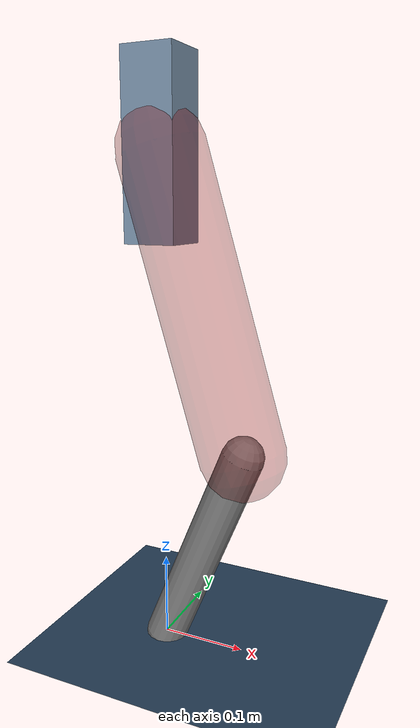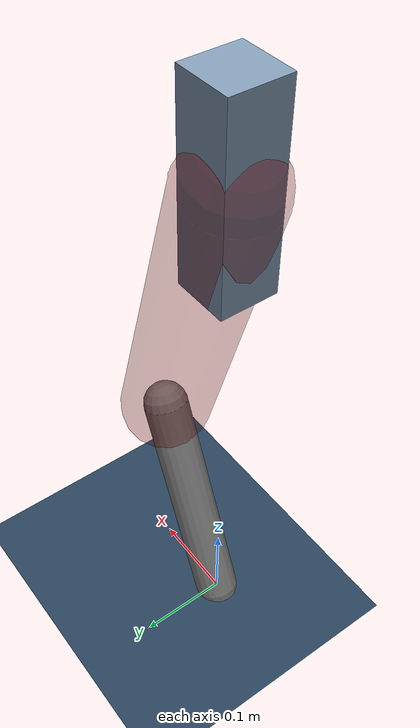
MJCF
<mujoco model="Hopper2D">
	<compiler inertiafromgeom="true" angle="radian" />
	<option timestep="0.001" integrator="implicit" cone="elliptic" solver="Newton" tolerance="1e-10" />

	<default>
		<geom contype="1" conaffinity="1" condim="3" friction="2 0.005 0.0001" solref="0.005 1" />
		<joint limited="true" damping="0.1" />
	</default>

	<asset>
		<texture name="skybox" type="skybox" builtin="gradient" rgb1=".4 .6 .8" rgb2="0 0 0" width="800" height="800" />
		<texture name="grid" type="2d" builtin="checker" rgb1=".1 .2 .3" rgb2=".2 .3 .4" width="300" height="300" mark="edge" markrgb=".2 .3 .4" />
		<material name="ground" texture="grid" texrepeat="1 1" texuniform="true" reflectance="0.1" />
		<material name="leg" rgba="0.5 0.6 0.7 1" />
	</asset>

	<worldbody>

		<geom name="floor" type="plane" size="5 5 0.25" material="ground" />

		<light directional="false" diffuse="0.8 0.8 0.8" specular="0.3 0.3 0.3" pos="0 0 2" dir="0 0 -1" />
		<light mode="targetbodycom" target="base" directional="false" diffuse="0.8 0.8 0.8" specular="0.3 0.3 0.3" pos="0 0 2" dir="0 0 -1" />

		<camera name="fixed" pos="0 -2 1" xyaxes="1 0 0 0 0 1" />
		<camera name="tracking" mode="trackcom" pos="0 -3 1" />

		<body name="root" pos="0 0 0.5797292901744047">
			<joint name="slide_x" type="slide" axis="1 0 0" range="-100 100" />
			<joint name="slide_z" type="slide" axis="0 0 1" range="0 10" />

			<body name="base" pos="0 0 0">
				<geom name="torso" type="box" size="0.03 0.03 0.1" mass="3.822" material="leg" />

				<body name="link1" pos="0 0 0" euler="0 1.2806465250654855 0">
					<joint type="hinge" axis="0 -1 0" pos="0 0 0" name="hinge1" limited="true" range="-3.14 3.14" stiffness="0" damping="0.1" />
					<geom name="thigh" type="capsule" fromto="0 0 0 0.34898651436736206 0 0" size="0.05" rgba="0.5 0 0 0.3" mass="1.1238622402286138" />

					<body name="link2" pos="0.34898651436736206 0 0" euler="0 0.6766558926360015 0">
						<joint type="hinge" axis="0 -1 0" pos="0 0 0" name="hinge2" limited="true" range="-3.14 3.14" stiffness="0" damping="0.1" />
						<geom name="shank" type="capsule" fromto="0 0 0 0.26486897222105815 0 0" size="0.025" mass="0.45478207499895235" />

					</body>
				</body>
			</body>
		</body>
	</worldbody>

	<actuator>
		<motor name="torque1" joint="hinge1" ctrlrange="-151.94415270596278 151.94415270596278" ctrllimited="true" gear="1" />
		<motor name="torque2" joint="hinge2" ctrlrange="-133.43159208839577 133.43159208839577" ctrllimited="true" gear="1" />
	</actuator>
</mujoco>
